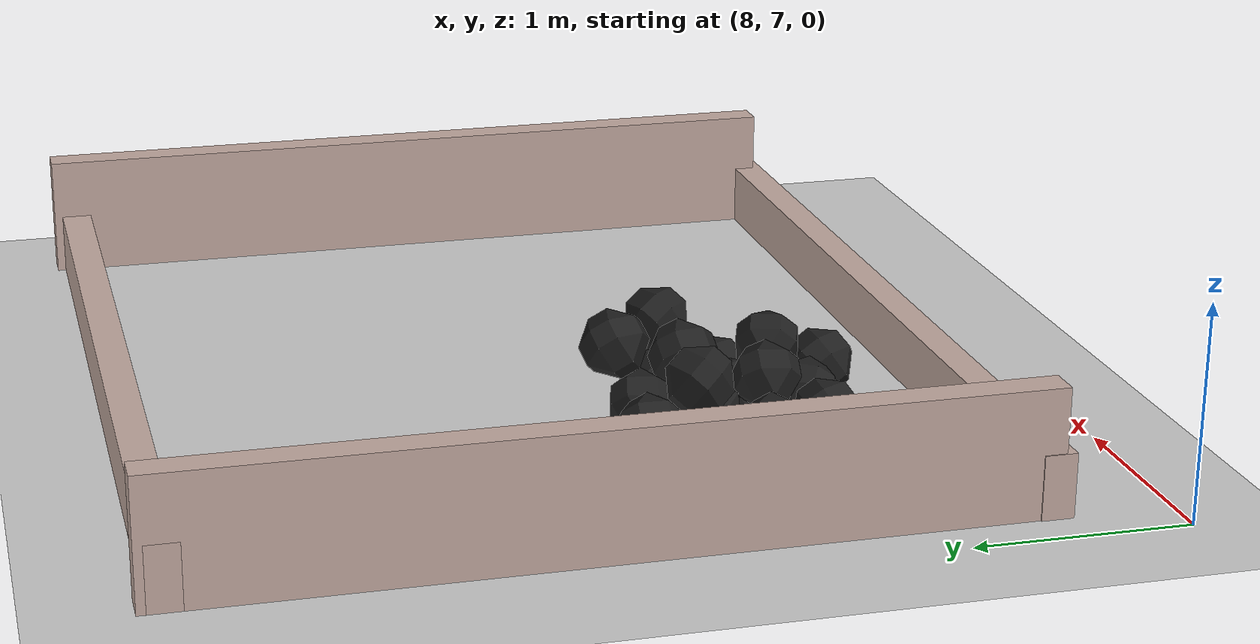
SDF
<sdf version="1.7">
 <world name="default">
  <model name="ground_plane">
   <static>1</static>
   <link name="link">
    <collision name="collision">
     <geometry><plane><normal>0 0 1</normal><size>100 100</size></plane></geometry>
     <surface><friction><ode><mu>100</mu><mu2>50</mu2></ode></friction></surface>
    </collision>
    <visual name="visual">
     <cast_shadows>0</cast_shadows>
     <geometry><plane><normal>0 0 1</normal><size>100 100</size></plane></geometry>
     <material>
      <script><uri>file://media/materials/scripts/gazebo.material</uri><name>Gazebo/Grey</name></script>
     </material>
    </visual>
   </link>
  </model>
  <model name="haoduomiantiaa_15">
   <link name="link_0">
    <inertial>
     <mass>0.2</mass>
     <inertia>
      <ixx>0.166667</ixx>
      <ixy>0</ixy>
      <ixz>0</ixz>
      <iyy>0.166667</iyy>
      <iyz>0</iyz>
      <izz>0.166667</izz>
     </inertia>
    </inertial>
    <visual name="visual">
     <geometry>
      <mesh>
       <uri>/home/lihaoyang/catkin_ws/src/pudong_gazebo/world/stl/haoduomianti.stl</uri>
       <scale>1 1 1</scale>
      </mesh>
     </geometry>
     <material>
      <lighting>1</lighting>
      <script><uri>file://media/materials/scripts/gazebo.material</uri><name>Gazebo/Black</name></script>
      <shader type="pixel"><normal_map>__default__</normal_map></shader>
      <ambient>0.3 0.3 0.3 1</ambient>
      <diffuse>0.7 0.7 0.7 1</diffuse>
      <specular>0.01 0.01 0.01 1</specular>
      <emissive>0 0 0 1</emissive>
     </material>
    </visual>
    <collision name="collision">
     <geometry>
      <mesh>
       <uri>/home/lihaoyang/catkin_ws/src/pudong_gazebo/world/stl/haoduomianti.stl</uri>
       <scale>1 1 1</scale>
      </mesh>
     </geometry>
     <surface>
      <friction>
       <ode><mu>1</mu><mu2>1</mu2><fdir1>0 0 0</fdir1><slip1>0</slip1><slip2>0</slip2></ode>
       <torsional>
        <coefficient>1</coefficient>
        <patch_radius>0</patch_radius>
        <surface_radius>0</surface_radius>
        <use_patch_radius>1</use_patch_radius>
        <ode><slip>0</slip></ode>
       </torsional>
      </friction>
      <bounce><restitution_coefficient>0</restitution_coefficient><threshold>1e+06</threshold></bounce>
      <contact>
       <collide_without_contact>0</collide_without_contact>
       <collide_without_contact_bitmask>1</collide_without_contact_bitmask>
       <collide_bitmask>1</collide_bitmask>
       <ode>
        <soft_cfm>0</soft_cfm>
        <soft_erp>0.2</soft_erp>
        <kp>1e+13</kp>
        <kd>1</kd>
        <max_vel>0.01</max_vel>
        <min_depth>0</min_depth>
       </ode>
       <bullet>
        <split_impulse>1</split_impulse>
        <split_impulse_penetration_threshold>-0.01</split_impulse_penetration_threshold>
        <soft_cfm>0</soft_cfm>
        <soft_erp>0.2</soft_erp>
        <kp>1e+13</kp>
        <kd>1</kd>
       </bullet>
      </contact>
     </surface>
    </collision>
   </link>
   <static>0</static>
   <pose>9.53275 8.22216 -0.115589 0.785344 -0.615562 -0.567623</pose>
  </model>
  <model name="haoduomiantiaa_33">
   <link name="link_0">
    <inertial>
     <mass>0.2</mass>
     <inertia>
      <ixx>0.166667</ixx>
      <ixy>0</ixy>
      <ixz>0</ixz>
      <iyy>0.166667</iyy>
      <iyz>0</iyz>
      <izz>0.166667</izz>
     </inertia>
    </inertial>
    <visual name="visual">
     <geometry>
      <mesh>
       <uri>/home/lihaoyang/catkin_ws/src/pudong_gazebo/world/stl/haoduomianti.stl</uri>
       <scale>1 1 1</scale>
      </mesh>
     </geometry>
     <material>
      <lighting>1</lighting>
      <script><uri>file://media/materials/scripts/gazebo.material</uri><name>Gazebo/Black</name></script>
      <shader type="pixel"><normal_map>__default__</normal_map></shader>
      <ambient>0.3 0.3 0.3 1</ambient>
      <diffuse>0.7 0.7 0.7 1</diffuse>
      <specular>0.01 0.01 0.01 1</specular>
      <emissive>0 0 0 1</emissive>
     </material>
    </visual>
    <collision name="collision">
     <geometry>
      <mesh>
       <uri>/home/lihaoyang/catkin_ws/src/pudong_gazebo/world/stl/haoduomianti.stl</uri>
       <scale>1 1 1</scale>
      </mesh>
     </geometry>
     <surface>
      <friction>
       <ode><mu>1</mu><mu2>1</mu2><fdir1>0 0 0</fdir1><slip1>0</slip1><slip2>0</slip2></ode>
       <torsional>
        <coefficient>1</coefficient>
        <patch_radius>0</patch_radius>
        <surface_radius>0</surface_radius>
        <use_patch_radius>1</use_patch_radius>
        <ode><slip>0</slip></ode>
       </torsional>
      </friction>
      <bounce><restitution_coefficient>0</restitution_coefficient><threshold>1e+06</threshold></bounce>
      <contact>
       <collide_without_contact>0</collide_without_contact>
       <collide_without_contact_bitmask>1</collide_without_contact_bitmask>
       <collide_bitmask>1</collide_bitmask>
       <ode>
        <soft_cfm>0</soft_cfm>
        <soft_erp>0.2</soft_erp>
        <kp>1e+13</kp>
        <kd>1</kd>
        <max_vel>0.01</max_vel>
        <min_depth>0</min_depth>
       </ode>
       <bullet>
        <split_impulse>1</split_impulse>
        <split_impulse_penetration_threshold>-0.01</split_impulse_penetration_threshold>
        <soft_cfm>0</soft_cfm>
        <soft_erp>0.2</soft_erp>
        <kp>1e+13</kp>
        <kd>1</kd>
       </bullet>
      </contact>
     </surface>
    </collision>
   </link>
   <static>0</static>
   <pose>9.22953 8.83439 0.117236 0.778802 -0.52781 3.07919</pose>
  </model>
  <model name="haoduomiantiaa_49">
   <link name="link_0">
    <inertial>
     <mass>0.2</mass>
     <inertia>
      <ixx>0.166667</ixx>
      <ixy>0</ixy>
      <ixz>0</ixz>
      <iyy>0.166667</iyy>
      <iyz>0</iyz>
      <izz>0.166667</izz>
     </inertia>
    </inertial>
    <visual name="visual">
     <geometry>
      <mesh>
       <uri>/home/lihaoyang/catkin_ws/src/pudong_gazebo/world/stl/haoduomianti.stl</uri>
       <scale>1 1 1</scale>
      </mesh>
     </geometry>
     <material>
      <lighting>1</lighting>
      <script><uri>file://media/materials/scripts/gazebo.material</uri><name>Gazebo/Black</name></script>
      <shader type="pixel"><normal_map>__default__</normal_map></shader>
      <ambient>0.3 0.3 0.3 1</ambient>
      <diffuse>0.7 0.7 0.7 1</diffuse>
      <specular>0.01 0.01 0.01 1</specular>
      <emissive>0 0 0 1</emissive>
     </material>
    </visual>
    <collision name="collision">
     <geometry>
      <mesh>
       <uri>/home/lihaoyang/catkin_ws/src/pudong_gazebo/world/stl/haoduomianti.stl</uri>
       <scale>1 1 1</scale>
      </mesh>
     </geometry>
     <surface>
      <friction>
       <ode><mu>1</mu><mu2>1</mu2><fdir1>0 0 0</fdir1><slip1>0</slip1><slip2>0</slip2></ode>
       <torsional>
        <coefficient>1</coefficient>
        <patch_radius>0</patch_radius>
        <surface_radius>0</surface_radius>
        <use_patch_radius>1</use_patch_radius>
        <ode><slip>0</slip></ode>
       </torsional>
      </friction>
      <bounce><restitution_coefficient>0</restitution_coefficient><threshold>1e+06</threshold></bounce>
      <contact>
       <collide_without_contact>0</collide_without_contact>
       <collide_without_contact_bitmask>1</collide_without_contact_bitmask>
       <collide_bitmask>1</collide_bitmask>
       <ode>
        <soft_cfm>0</soft_cfm>
        <soft_erp>0.2</soft_erp>
        <kp>1e+13</kp>
        <kd>1</kd>
        <max_vel>0.01</max_vel>
        <min_depth>0</min_depth>
       </ode>
       <bullet>
        <split_impulse>1</split_impulse>
        <split_impulse_penetration_threshold>-0.01</split_impulse_penetration_threshold>
        <soft_cfm>0</soft_cfm>
        <soft_erp>0.2</soft_erp>
        <kp>1e+13</kp>
        <kd>1</kd>
       </bullet>
      </contact>
     </surface>
    </collision>
   </link>
   <static>0</static>
   <pose>9.01794 8.79198 -0.115499 0.785403 -0.615472 -0.610764</pose>
  </model>
  <model name="haoduomiantiaa_52">
   <link name="link_0">
    <inertial>
     <mass>0.2</mass>
     <inertia>
      <ixx>0.166667</ixx>
      <ixy>0</ixy>
      <ixz>0</ixz>
      <iyy>0.166667</iyy>
      <iyz>0</iyz>
      <izz>0.166667</izz>
     </inertia>
    </inertial>
    <visual name="visual">
     <geometry>
      <mesh>
       <uri>/home/lihaoyang/catkin_ws/src/pudong_gazebo/world/stl/haoduomianti.stl</uri>
       <scale>1 1 1</scale>
      </mesh>
     </geometry>
     <material>
      <lighting>1</lighting>
      <script><uri>file://media/materials/scripts/gazebo.material</uri><name>Gazebo/Black</name></script>
      <shader type="pixel"><normal_map>__default__</normal_map></shader>
      <ambient>0.3 0.3 0.3 1</ambient>
      <diffuse>0.7 0.7 0.7 1</diffuse>
      <specular>0.01 0.01 0.01 1</specular>
      <emissive>0 0 0 1</emissive>
     </material>
    </visual>
    <collision name="collision">
     <geometry>
      <mesh>
       <uri>/home/lihaoyang/catkin_ws/src/pudong_gazebo/world/stl/haoduomianti.stl</uri>
       <scale>1 1 1</scale>
      </mesh>
     </geometry>
     <surface>
      <friction>
       <ode><mu>1</mu><mu2>1</mu2><fdir1>0 0 0</fdir1><slip1>0</slip1><slip2>0</slip2></ode>
       <torsional>
        <coefficient>1</coefficient>
        <patch_radius>0</patch_radius>
        <surface_radius>0</surface_radius>
        <use_patch_radius>1</use_patch_radius>
        <ode><slip>0</slip></ode>
       </torsional>
      </friction>
      <bounce><restitution_coefficient>0</restitution_coefficient><threshold>1e+06</threshold></bounce>
      <contact>
       <collide_without_contact>0</collide_without_contact>
       <collide_without_contact_bitmask>1</collide_without_contact_bitmask>
       <collide_bitmask>1</collide_bitmask>
       <ode>
        <soft_cfm>0</soft_cfm>
        <soft_erp>0.2</soft_erp>
        <kp>1e+13</kp>
        <kd>1</kd>
        <max_vel>0.01</max_vel>
        <min_depth>0</min_depth>
       </ode>
       <bullet>
        <split_impulse>1</split_impulse>
        <split_impulse_penetration_threshold>-0.01</split_impulse_penetration_threshold>
        <soft_cfm>0</soft_cfm>
        <soft_erp>0.2</soft_erp>
        <kp>1e+13</kp>
        <kd>1</kd>
       </bullet>
      </contact>
     </surface>
    </collision>
   </link>
   <static>0</static>
   <pose>9.56102 9.00311 -0.115135 0.785449 -0.615415 -2.30364</pose>
  </model>
  <model name="haoduomiantiaa_60">
   <link name="link_0">
    <inertial>
     <mass>0.2</mass>
     <inertia>
      <ixx>0.166667</ixx>
      <ixy>0</ixy>
      <ixz>0</ixz>
      <iyy>0.166667</iyy>
      <iyz>0</iyz>
      <izz>0.166667</izz>
     </inertia>
    </inertial>
    <visual name="visual">
     <geometry>
      <mesh>
       <uri>/home/lihaoyang/catkin_ws/src/pudong_gazebo/world/stl/haoduomianti.stl</uri>
       <scale>1 1 1</scale>
      </mesh>
     </geometry>
     <material>
      <lighting>1</lighting>
      <script><uri>file://media/materials/scripts/gazebo.material</uri><name>Gazebo/Black</name></script>
      <shader type="pixel"><normal_map>__default__</normal_map></shader>
      <ambient>0.3 0.3 0.3 1</ambient>
      <diffuse>0.7 0.7 0.7 1</diffuse>
      <specular>0.01 0.01 0.01 1</specular>
      <emissive>0 0 0 1</emissive>
     </material>
    </visual>
    <collision name="collision">
     <geometry>
      <mesh>
       <uri>/home/lihaoyang/catkin_ws/src/pudong_gazebo/world/stl/haoduomianti.stl</uri>
       <scale>1 1 1</scale>
      </mesh>
     </geometry>
     <surface>
      <friction>
       <ode><mu>1</mu><mu2>1</mu2><fdir1>0 0 0</fdir1><slip1>0</slip1><slip2>0</slip2></ode>
       <torsional>
        <coefficient>1</coefficient>
        <patch_radius>0</patch_radius>
        <surface_radius>0</surface_radius>
        <use_patch_radius>1</use_patch_radius>
        <ode><slip>0</slip></ode>
       </torsional>
      </friction>
      <bounce><restitution_coefficient>0</restitution_coefficient><threshold>1e+06</threshold></bounce>
      <contact>
       <collide_without_contact>0</collide_without_contact>
       <collide_without_contact_bitmask>1</collide_without_contact_bitmask>
       <collide_bitmask>1</collide_bitmask>
       <ode>
        <soft_cfm>0</soft_cfm>
        <soft_erp>0.2</soft_erp>
        <kp>1e+13</kp>
        <kd>1</kd>
        <max_vel>0.01</max_vel>
        <min_depth>0</min_depth>
       </ode>
       <bullet>
        <split_impulse>1</split_impulse>
        <split_impulse_penetration_threshold>-0.01</split_impulse_penetration_threshold>
        <soft_cfm>0</soft_cfm>
        <soft_erp>0.2</soft_erp>
        <kp>1e+13</kp>
        <kd>1</kd>
       </bullet>
      </contact>
     </surface>
    </collision>
   </link>
   <static>0</static>
   <pose>9.25549 9.04348 -0.115762 0.78545 -0.615356 2.0626</pose>
  </model>
  <model name="haoduomiantiaa_65">
   <link name="link_0">
    <inertial>
     <mass>0.2</mass>
     <inertia>
      <ixx>0.166667</ixx>
      <ixy>0</ixy>
      <ixz>0</ixz>
      <iyy>0.166667</iyy>
      <iyz>0</iyz>
      <izz>0.166667</izz>
     </inertia>
    </inertial>
    <visual name="visual">
     <geometry>
      <mesh>
       <uri>/home/lihaoyang/catkin_ws/src/pudong_gazebo/world/stl/haoduomianti.stl</uri>
       <scale>1 1 1</scale>
      </mesh>
     </geometry>
     <material>
      <lighting>1</lighting>
      <script><uri>file://media/materials/scripts/gazebo.material</uri><name>Gazebo/Black</name></script>
      <shader type="pixel"><normal_map>__default__</normal_map></shader>
      <ambient>0.3 0.3 0.3 1</ambient>
      <diffuse>0.7 0.7 0.7 1</diffuse>
      <specular>0.01 0.01 0.01 1</specular>
      <emissive>0 0 0 1</emissive>
     </material>
    </visual>
    <collision name="collision">
     <geometry>
      <mesh>
       <uri>/home/lihaoyang/catkin_ws/src/pudong_gazebo/world/stl/haoduomianti.stl</uri>
       <scale>1 1 1</scale>
      </mesh>
     </geometry>
     <surface>
      <friction>
       <ode><mu>1</mu><mu2>1</mu2><fdir1>0 0 0</fdir1><slip1>0</slip1><slip2>0</slip2></ode>
       <torsional>
        <coefficient>1</coefficient>
        <patch_radius>0</patch_radius>
        <surface_radius>0</surface_radius>
        <use_patch_radius>1</use_patch_radius>
        <ode><slip>0</slip></ode>
       </torsional>
      </friction>
      <bounce><restitution_coefficient>0</restitution_coefficient><threshold>1e+06</threshold></bounce>
      <contact>
       <collide_without_contact>0</collide_without_contact>
       <collide_without_contact_bitmask>1</collide_without_contact_bitmask>
       <collide_bitmask>1</collide_bitmask>
       <ode>
        <soft_cfm>0</soft_cfm>
        <soft_erp>0.2</soft_erp>
        <kp>1e+13</kp>
        <kd>1</kd>
        <max_vel>0.01</max_vel>
        <min_depth>0</min_depth>
       </ode>
       <bullet>
        <split_impulse>1</split_impulse>
        <split_impulse_penetration_threshold>-0.01</split_impulse_penetration_threshold>
        <soft_cfm>0</soft_cfm>
        <soft_erp>0.2</soft_erp>
        <kp>1e+13</kp>
        <kd>1</kd>
       </bullet>
      </contact>
     </surface>
    </collision>
   </link>
   <static>0</static>
   <pose>9.62604 8.80501 0.096395 0.800184 -0.725386 0.165284</pose>
  </model>
  <model name="haoduomiantiaa_70">
   <link name="link_0">
    <inertial>
     <mass>0.2</mass>
     <inertia>
      <ixx>0.166667</ixx>
      <ixy>0</ixy>
      <ixz>0</ixz>
      <iyy>0.166667</iyy>
      <iyz>0</iyz>
      <izz>0.166667</izz>
     </inertia>
    </inertial>
    <visual name="visual">
     <geometry>
      <mesh>
       <uri>/home/lihaoyang/catkin_ws/src/pudong_gazebo/world/stl/haoduomianti.stl</uri>
       <scale>1 1 1</scale>
      </mesh>
     </geometry>
     <material>
      <lighting>1</lighting>
      <script><uri>file://media/materials/scripts/gazebo.material</uri><name>Gazebo/Black</name></script>
      <shader type="pixel"><normal_map>__default__</normal_map></shader>
      <ambient>0.3 0.3 0.3 1</ambient>
      <diffuse>0.7 0.7 0.7 1</diffuse>
      <specular>0.01 0.01 0.01 1</specular>
      <emissive>0 0 0 1</emissive>
     </material>
    </visual>
    <collision name="collision">
     <geometry>
      <mesh>
       <uri>/home/lihaoyang/catkin_ws/src/pudong_gazebo/world/stl/haoduomianti.stl</uri>
       <scale>1 1 1</scale>
      </mesh>
     </geometry>
     <surface>
      <friction>
       <ode><mu>1</mu><mu2>1</mu2><fdir1>0 0 0</fdir1><slip1>0</slip1><slip2>0</slip2></ode>
       <torsional>
        <coefficient>1</coefficient>
        <patch_radius>0</patch_radius>
        <surface_radius>0</surface_radius>
        <use_patch_radius>1</use_patch_radius>
        <ode><slip>0</slip></ode>
       </torsional>
      </friction>
      <bounce><restitution_coefficient>0</restitution_coefficient><threshold>1e+06</threshold></bounce>
      <contact>
       <collide_without_contact>0</collide_without_contact>
       <collide_without_contact_bitmask>1</collide_without_contact_bitmask>
       <collide_bitmask>1</collide_bitmask>
       <ode>
        <soft_cfm>0</soft_cfm>
        <soft_erp>0.2</soft_erp>
        <kp>1e+13</kp>
        <kd>1</kd>
        <max_vel>0.01</max_vel>
        <min_depth>0</min_depth>
       </ode>
       <bullet>
        <split_impulse>1</split_impulse>
        <split_impulse_penetration_threshold>-0.01</split_impulse_penetration_threshold>
        <soft_cfm>0</soft_cfm>
        <soft_erp>0.2</soft_erp>
        <kp>1e+13</kp>
        <kd>1</kd>
       </bullet>
      </contact>
     </surface>
    </collision>
   </link>
   <static>0</static>
   <pose>9.73916 9.105 0.127056 0.827026 -0.683801 0.303821</pose>
  </model>
  <model name="haoduomiantiaa_77">
   <link name="link_0">
    <inertial>
     <mass>0.2</mass>
     <inertia>
      <ixx>0.166667</ixx>
      <ixy>0</ixy>
      <ixz>0</ixz>
      <iyy>0.166667</iyy>
      <iyz>0</iyz>
      <izz>0.166667</izz>
     </inertia>
    </inertial>
    <visual name="visual">
     <geometry>
      <mesh>
       <uri>/home/lihaoyang/catkin_ws/src/pudong_gazebo/world/stl/haoduomianti.stl</uri>
       <scale>1 1 1</scale>
      </mesh>
     </geometry>
     <material>
      <lighting>1</lighting>
      <script><uri>file://media/materials/scripts/gazebo.material</uri><name>Gazebo/Black</name></script>
      <shader type="pixel"><normal_map>__default__</normal_map></shader>
      <ambient>0.3 0.3 0.3 1</ambient>
      <diffuse>0.7 0.7 0.7 1</diffuse>
      <specular>0.01 0.01 0.01 1</specular>
      <emissive>0 0 0 1</emissive>
     </material>
    </visual>
    <collision name="collision">
     <geometry>
      <mesh>
       <uri>/home/lihaoyang/catkin_ws/src/pudong_gazebo/world/stl/haoduomianti.stl</uri>
       <scale>1 1 1</scale>
      </mesh>
     </geometry>
     <surface>
      <friction>
       <ode><mu>1</mu><mu2>1</mu2><fdir1>0 0 0</fdir1><slip1>0</slip1><slip2>0</slip2></ode>
       <torsional>
        <coefficient>1</coefficient>
        <patch_radius>0</patch_radius>
        <surface_radius>0</surface_radius>
        <use_patch_radius>1</use_patch_radius>
        <ode><slip>0</slip></ode>
       </torsional>
      </friction>
      <bounce><restitution_coefficient>0</restitution_coefficient><threshold>1e+06</threshold></bounce>
      <contact>
       <collide_without_contact>0</collide_without_contact>
       <collide_without_contact_bitmask>1</collide_without_contact_bitmask>
       <collide_bitmask>1</collide_bitmask>
       <ode>
        <soft_cfm>0</soft_cfm>
        <soft_erp>0.2</soft_erp>
        <kp>1e+13</kp>
        <kd>1</kd>
        <max_vel>0.01</max_vel>
        <min_depth>0</min_depth>
       </ode>
       <bullet>
        <split_impulse>1</split_impulse>
        <split_impulse_penetration_threshold>-0.01</split_impulse_penetration_threshold>
        <soft_cfm>0</soft_cfm>
        <soft_erp>0.2</soft_erp>
        <kp>1e+13</kp>
        <kd>1</kd>
       </bullet>
      </contact>
     </surface>
    </collision>
   </link>
   <static>0</static>
   <pose>9.69242 8.35949 0.059679 0.76711 -0.424377 -0.375954</pose>
  </model>
  <model name="haoduomiantiaa_78">
   <link name="link_0">
    <inertial>
     <mass>0.2</mass>
     <inertia>
      <ixx>0.166667</ixx>
      <ixy>0</ixy>
      <ixz>0</ixz>
      <iyy>0.166667</iyy>
      <iyz>0</iyz>
      <izz>0.166667</izz>
     </inertia>
    </inertial>
    <visual name="visual">
     <geometry>
      <mesh>
       <uri>/home/lihaoyang/catkin_ws/src/pudong_gazebo/world/stl/haoduomianti.stl</uri>
       <scale>1 1 1</scale>
      </mesh>
     </geometry>
     <material>
      <lighting>1</lighting>
      <script><uri>file://media/materials/scripts/gazebo.material</uri><name>Gazebo/Black</name></script>
      <shader type="pixel"><normal_map>__default__</normal_map></shader>
      <ambient>0.3 0.3 0.3 1</ambient>
      <diffuse>0.7 0.7 0.7 1</diffuse>
      <specular>0.01 0.01 0.01 1</specular>
      <emissive>0 0 0 1</emissive>
     </material>
    </visual>
    <collision name="collision">
     <geometry>
      <mesh>
       <uri>/home/lihaoyang/catkin_ws/src/pudong_gazebo/world/stl/haoduomianti.stl</uri>
       <scale>1 1 1</scale>
      </mesh>
     </geometry>
     <surface>
      <friction>
       <ode><mu>1</mu><mu2>1</mu2><fdir1>0 0 0</fdir1><slip1>0</slip1><slip2>0</slip2></ode>
       <torsional>
        <coefficient>1</coefficient>
        <patch_radius>0</patch_radius>
        <surface_radius>0</surface_radius>
        <use_patch_radius>1</use_patch_radius>
        <ode><slip>0</slip></ode>
       </torsional>
      </friction>
      <bounce><restitution_coefficient>0</restitution_coefficient><threshold>1e+06</threshold></bounce>
      <contact>
       <collide_without_contact>0</collide_without_contact>
       <collide_without_contact_bitmask>1</collide_without_contact_bitmask>
       <collide_bitmask>1</collide_bitmask>
       <ode>
        <soft_cfm>0</soft_cfm>
        <soft_erp>0.2</soft_erp>
        <kp>1e+13</kp>
        <kd>1</kd>
        <max_vel>0.01</max_vel>
        <min_depth>0</min_depth>
       </ode>
       <bullet>
        <split_impulse>1</split_impulse>
        <split_impulse_penetration_threshold>-0.01</split_impulse_penetration_threshold>
        <soft_cfm>0</soft_cfm>
        <soft_erp>0.2</soft_erp>
        <kp>1e+13</kp>
        <kd>1</kd>
       </bullet>
      </contact>
     </surface>
    </collision>
   </link>
   <static>0</static>
   <pose>9.12945 8.50803 -0.115767 0.785426 -0.615477 -0.141677</pose>
  </model>
  <model name="haoduomiantiaa_81">
   <link name="link_0">
    <inertial>
     <mass>0.2</mass>
     <inertia>
      <ixx>0.166667</ixx>
      <ixy>0</ixy>
      <ixz>0</ixz>
      <iyy>0.166667</iyy>
      <iyz>0</iyz>
      <izz>0.166667</izz>
     </inertia>
    </inertial>
    <visual name="visual">
     <geometry>
      <mesh>
       <uri>/home/lihaoyang/catkin_ws/src/pudong_gazebo/world/stl/haoduomianti.stl</uri>
       <scale>1 1 1</scale>
      </mesh>
     </geometry>
     <material>
      <lighting>1</lighting>
      <script><uri>file://media/materials/scripts/gazebo.material</uri><name>Gazebo/Black</name></script>
      <shader type="pixel"><normal_map>__default__</normal_map></shader>
      <ambient>0.3 0.3 0.3 1</ambient>
      <diffuse>0.7 0.7 0.7 1</diffuse>
      <specular>0.01 0.01 0.01 1</specular>
      <emissive>0 0 0 1</emissive>
     </material>
    </visual>
    <collision name="collision">
     <geometry>
      <mesh>
       <uri>/home/lihaoyang/catkin_ws/src/pudong_gazebo/world/stl/haoduomianti.stl</uri>
       <scale>1 1 1</scale>
      </mesh>
     </geometry>
     <surface>
      <friction>
       <ode><mu>1</mu><mu2>1</mu2><fdir1>0 0 0</fdir1><slip1>0</slip1><slip2>0</slip2></ode>
       <torsional>
        <coefficient>1</coefficient>
        <patch_radius>0</patch_radius>
        <surface_radius>0</surface_radius>
        <use_patch_radius>1</use_patch_radius>
        <ode><slip>0</slip></ode>
       </torsional>
      </friction>
      <bounce><restitution_coefficient>0</restitution_coefficient><threshold>1e+06</threshold></bounce>
      <contact>
       <collide_without_contact>0</collide_without_contact>
       <collide_without_contact_bitmask>1</collide_without_contact_bitmask>
       <collide_bitmask>1</collide_bitmask>
       <ode>
        <soft_cfm>0</soft_cfm>
        <soft_erp>0.2</soft_erp>
        <kp>1e+13</kp>
        <kd>1</kd>
        <max_vel>0.01</max_vel>
        <min_depth>0</min_depth>
       </ode>
       <bullet>
        <split_impulse>1</split_impulse>
        <split_impulse_penetration_threshold>-0.01</split_impulse_penetration_threshold>
        <soft_cfm>0</soft_cfm>
        <soft_erp>0.2</soft_erp>
        <kp>1e+13</kp>
        <kd>1</kd>
       </bullet>
      </contact>
     </surface>
    </collision>
   </link>
   <static>0</static>
   <pose>9.80614 8.85233 -0.115502 0.7854 -0.615401 -1.24781</pose>
  </model>
  <model name="haoduomiantiaa_88">
   <link name="link_0">
    <inertial>
     <mass>0.2</mass>
     <inertia>
      <ixx>0.166667</ixx>
      <ixy>0</ixy>
      <ixz>0</ixz>
      <iyy>0.166667</iyy>
      <iyz>0</iyz>
      <izz>0.166667</izz>
     </inertia>
    </inertial>
    <visual name="visual">
     <geometry>
      <mesh>
       <uri>/home/lihaoyang/catkin_ws/src/pudong_gazebo/world/stl/haoduomianti.stl</uri>
       <scale>1 1 1</scale>
      </mesh>
     </geometry>
     <material>
      <lighting>1</lighting>
      <script><uri>file://media/materials/scripts/gazebo.material</uri><name>Gazebo/Black</name></script>
      <shader type="pixel"><normal_map>__default__</normal_map></shader>
      <ambient>0.3 0.3 0.3 1</ambient>
      <diffuse>0.7 0.7 0.7 1</diffuse>
      <specular>0.01 0.01 0.01 1</specular>
      <emissive>0 0 0 1</emissive>
     </material>
    </visual>
    <collision name="collision">
     <geometry>
      <mesh>
       <uri>/home/lihaoyang/catkin_ws/src/pudong_gazebo/world/stl/haoduomianti.stl</uri>
       <scale>1 1 1</scale>
      </mesh>
     </geometry>
     <surface>
      <friction>
       <ode><mu>1</mu><mu2>1</mu2><fdir1>0 0 0</fdir1><slip1>0</slip1><slip2>0</slip2></ode>
       <torsional>
        <coefficient>1</coefficient>
        <patch_radius>0</patch_radius>
        <surface_radius>0</surface_radius>
        <use_patch_radius>1</use_patch_radius>
        <ode><slip>0</slip></ode>
       </torsional>
      </friction>
      <bounce><restitution_coefficient>0</restitution_coefficient><threshold>1e+06</threshold></bounce>
      <contact>
       <collide_without_contact>0</collide_without_contact>
       <collide_without_contact_bitmask>1</collide_without_contact_bitmask>
       <collide_bitmask>1</collide_bitmask>
       <ode>
        <soft_cfm>0</soft_cfm>
        <soft_erp>0.2</soft_erp>
        <kp>1e+13</kp>
        <kd>1</kd>
        <max_vel>0.01</max_vel>
        <min_depth>0</min_depth>
       </ode>
       <bullet>
        <split_impulse>1</split_impulse>
        <split_impulse_penetration_threshold>-0.01</split_impulse_penetration_threshold>
        <soft_cfm>0</soft_cfm>
        <soft_erp>0.2</soft_erp>
        <kp>1e+13</kp>
        <kd>1</kd>
       </bullet>
      </contact>
     </surface>
    </collision>
   </link>
   <static>0</static>
   <pose>9.3963 8.74204 -0.111865 0.785357 -0.530099 3.08694</pose>
  </model>
  <model name="haoduomiantiaa_92">
   <link name="link_0">
    <inertial>
     <mass>0.2</mass>
     <inertia>
      <ixx>0.166667</ixx>
      <ixy>0</ixy>
      <ixz>0</ixz>
      <iyy>0.166667</iyy>
      <iyz>0</iyz>
      <izz>0.166667</izz>
     </inertia>
    </inertial>
    <visual name="visual">
     <geometry>
      <mesh>
       <uri>/home/lihaoyang/catkin_ws/src/pudong_gazebo/world/stl/haoduomianti.stl</uri>
       <scale>1 1 1</scale>
      </mesh>
     </geometry>
     <material>
      <lighting>1</lighting>
      <script><uri>file://media/materials/scripts/gazebo.material</uri><name>Gazebo/Black</name></script>
      <shader type="pixel"><normal_map>__default__</normal_map></shader>
      <ambient>0.3 0.3 0.3 1</ambient>
      <diffuse>0.7 0.7 0.7 1</diffuse>
      <specular>0.01 0.01 0.01 1</specular>
      <emissive>0 0 0 1</emissive>
     </material>
    </visual>
    <collision name="collision">
     <geometry>
      <mesh>
       <uri>/home/lihaoyang/catkin_ws/src/pudong_gazebo/world/stl/haoduomianti.stl</uri>
       <scale>1 1 1</scale>
      </mesh>
     </geometry>
     <surface>
      <friction>
       <ode><mu>1</mu><mu2>1</mu2><fdir1>0 0 0</fdir1><slip1>0</slip1><slip2>0</slip2></ode>
       <torsional>
        <coefficient>1</coefficient>
        <patch_radius>0</patch_radius>
        <surface_radius>0</surface_radius>
        <use_patch_radius>1</use_patch_radius>
        <ode><slip>0</slip></ode>
       </torsional>
      </friction>
      <bounce><restitution_coefficient>0</restitution_coefficient><threshold>1e+06</threshold></bounce>
      <contact>
       <collide_without_contact>0</collide_without_contact>
       <collide_without_contact_bitmask>1</collide_without_contact_bitmask>
       <collide_bitmask>1</collide_bitmask>
       <ode>
        <soft_cfm>0</soft_cfm>
        <soft_erp>0.2</soft_erp>
        <kp>1e+13</kp>
        <kd>1</kd>
        <max_vel>0.01</max_vel>
        <min_depth>0</min_depth>
       </ode>
       <bullet>
        <split_impulse>1</split_impulse>
        <split_impulse_penetration_threshold>-0.01</split_impulse_penetration_threshold>
        <soft_cfm>0</soft_cfm>
        <soft_erp>0.2</soft_erp>
        <kp>1e+13</kp>
        <kd>1</kd>
       </bullet>
      </contact>
     </surface>
    </collision>
   </link>
   <static>0</static>
   <pose>9.89243 8.02276 -0.11498 0.774483 -0.621377 0.567958</pose>
  </model>
  <model name="haoduomiantiaa_95">
   <link name="link_0">
    <inertial>
     <mass>0.2</mass>
     <inertia>
      <ixx>0.166667</ixx>
      <ixy>0</ixy>
      <ixz>0</ixz>
      <iyy>0.166667</iyy>
      <iyz>0</iyz>
      <izz>0.166667</izz>
     </inertia>
    </inertial>
    <visual name="visual">
     <geometry>
      <mesh>
       <uri>/home/lihaoyang/catkin_ws/src/pudong_gazebo/world/stl/haoduomianti.stl</uri>
       <scale>1 1 1</scale>
      </mesh>
     </geometry>
     <material>
      <lighting>1</lighting>
      <script><uri>file://media/materials/scripts/gazebo.material</uri><name>Gazebo/Black</name></script>
      <shader type="pixel"><normal_map>__default__</normal_map></shader>
      <ambient>0.3 0.3 0.3 1</ambient>
      <diffuse>0.7 0.7 0.7 1</diffuse>
      <specular>0.01 0.01 0.01 1</specular>
      <emissive>0 0 0 1</emissive>
     </material>
    </visual>
    <collision name="collision">
     <geometry>
      <mesh>
       <uri>/home/lihaoyang/catkin_ws/src/pudong_gazebo/world/stl/haoduomianti.stl</uri>
       <scale>1 1 1</scale>
      </mesh>
     </geometry>
     <surface>
      <friction>
       <ode><mu>1</mu><mu2>1</mu2><fdir1>0 0 0</fdir1><slip1>0</slip1><slip2>0</slip2></ode>
       <torsional>
        <coefficient>1</coefficient>
        <patch_radius>0</patch_radius>
        <surface_radius>0</surface_radius>
        <use_patch_radius>1</use_patch_radius>
        <ode><slip>0</slip></ode>
       </torsional>
      </friction>
      <bounce><restitution_coefficient>0</restitution_coefficient><threshold>1e+06</threshold></bounce>
      <contact>
       <collide_without_contact>0</collide_without_contact>
       <collide_without_contact_bitmask>1</collide_without_contact_bitmask>
       <collide_bitmask>1</collide_bitmask>
       <ode>
        <soft_cfm>0</soft_cfm>
        <soft_erp>0.2</soft_erp>
        <kp>1e+13</kp>
        <kd>1</kd>
        <max_vel>0.01</max_vel>
        <min_depth>0</min_depth>
       </ode>
       <bullet>
        <split_impulse>1</split_impulse>
        <split_impulse_penetration_threshold>-0.01</split_impulse_penetration_threshold>
        <soft_cfm>0</soft_cfm>
        <soft_erp>0.2</soft_erp>
        <kp>1e+13</kp>
        <kd>1</kd>
       </bullet>
      </contact>
     </surface>
    </collision>
   </link>
   <static>0</static>
   <pose>8.85605 9.06822 -0.11548 0.785398 -0.615476 2.63149</pose>
  </model>
  <model name="haoduomiantiaa_104">
   <link name="link_0">
    <inertial>
     <mass>0.2</mass>
     <inertia>
      <ixx>0.166667</ixx>
      <ixy>0</ixy>
      <ixz>0</ixz>
      <iyy>0.166667</iyy>
      <iyz>0</iyz>
      <izz>0.166667</izz>
     </inertia>
    </inertial>
    <visual name="visual">
     <geometry>
      <mesh>
       <uri>/home/lihaoyang/catkin_ws/src/pudong_gazebo/world/stl/haoduomianti.stl</uri>
       <scale>1 1 1</scale>
      </mesh>
     </geometry>
     <material>
      <lighting>1</lighting>
      <script><uri>file://media/materials/scripts/gazebo.material</uri><name>Gazebo/Black</name></script>
      <shader type="pixel"><normal_map>__default__</normal_map></shader>
      <ambient>0.3 0.3 0.3 1</ambient>
      <diffuse>0.7 0.7 0.7 1</diffuse>
      <specular>0.01 0.01 0.01 1</specular>
      <emissive>0 0 0 1</emissive>
     </material>
    </visual>
    <collision name="collision">
     <geometry>
      <mesh>
       <uri>/home/lihaoyang/catkin_ws/src/pudong_gazebo/world/stl/haoduomianti.stl</uri>
       <scale>1 1 1</scale>
      </mesh>
     </geometry>
     <surface>
      <friction>
       <ode><mu>1</mu><mu2>1</mu2><fdir1>0 0 0</fdir1><slip1>0</slip1><slip2>0</slip2></ode>
       <torsional>
        <coefficient>1</coefficient>
        <patch_radius>0</patch_radius>
        <surface_radius>0</surface_radius>
        <use_patch_radius>1</use_patch_radius>
        <ode><slip>0</slip></ode>
       </torsional>
      </friction>
      <bounce><restitution_coefficient>0</restitution_coefficient><threshold>1e+06</threshold></bounce>
      <contact>
       <collide_without_contact>0</collide_without_contact>
       <collide_without_contact_bitmask>1</collide_without_contact_bitmask>
       <collide_bitmask>1</collide_bitmask>
       <ode>
        <soft_cfm>0</soft_cfm>
        <soft_erp>0.2</soft_erp>
        <kp>1e+13</kp>
        <kd>1</kd>
        <max_vel>0.01</max_vel>
        <min_depth>0</min_depth>
       </ode>
       <bullet>
        <split_impulse>1</split_impulse>
        <split_impulse_penetration_threshold>-0.01</split_impulse_penetration_threshold>
        <soft_cfm>0</soft_cfm>
        <soft_erp>0.2</soft_erp>
        <kp>1e+13</kp>
        <kd>1</kd>
       </bullet>
      </contact>
     </surface>
    </collision>
   </link>
   <static>0</static>
   <pose>9.40306 8.48727 0.038739 0.910572 -0.666023 -0.095247</pose>
  </model>
  <model name="haoduomiantiaa_106">
   <link name="link_0">
    <inertial>
     <mass>0.2</mass>
     <inertia>
      <ixx>0.166667</ixx>
      <ixy>0</ixy>
      <ixz>0</ixz>
      <iyy>0.166667</iyy>
      <iyz>0</iyz>
      <izz>0.166667</izz>
     </inertia>
    </inertial>
    <visual name="visual">
     <geometry>
      <mesh>
       <uri>/home/lihaoyang/catkin_ws/src/pudong_gazebo/world/stl/haoduomianti.stl</uri>
       <scale>1 1 1</scale>
      </mesh>
     </geometry>
     <material>
      <lighting>1</lighting>
      <script><uri>file://media/materials/scripts/gazebo.material</uri><name>Gazebo/Black</name></script>
      <shader type="pixel"><normal_map>__default__</normal_map></shader>
      <ambient>0.3 0.3 0.3 1</ambient>
      <diffuse>0.7 0.7 0.7 1</diffuse>
      <specular>0.01 0.01 0.01 1</specular>
      <emissive>0 0 0 1</emissive>
     </material>
    </visual>
    <collision name="collision">
     <geometry>
      <mesh>
       <uri>/home/lihaoyang/catkin_ws/src/pudong_gazebo/world/stl/haoduomianti.stl</uri>
       <scale>1 1 1</scale>
      </mesh>
     </geometry>
     <surface>
      <friction>
       <ode><mu>1</mu><mu2>1</mu2><fdir1>0 0 0</fdir1><slip1>0</slip1><slip2>0</slip2></ode>
       <torsional>
        <coefficient>1</coefficient>
        <patch_radius>0</patch_radius>
        <surface_radius>0</surface_radius>
        <use_patch_radius>1</use_patch_radius>
        <ode><slip>0</slip></ode>
       </torsional>
      </friction>
      <bounce><restitution_coefficient>0</restitution_coefficient><threshold>1e+06</threshold></bounce>
      <contact>
       <collide_without_contact>0</collide_without_contact>
       <collide_without_contact_bitmask>1</collide_without_contact_bitmask>
       <collide_bitmask>1</collide_bitmask>
       <ode>
        <soft_cfm>0</soft_cfm>
        <soft_erp>0.2</soft_erp>
        <kp>1e+13</kp>
        <kd>1</kd>
        <max_vel>0.01</max_vel>
        <min_depth>0</min_depth>
       </ode>
       <bullet>
        <split_impulse>1</split_impulse>
        <split_impulse_penetration_threshold>-0.01</split_impulse_penetration_threshold>
        <soft_cfm>0</soft_cfm>
        <soft_erp>0.2</soft_erp>
        <kp>1e+13</kp>
        <kd>1</kd>
       </bullet>
      </contact>
     </surface>
    </collision>
   </link>
   <static>0</static>
   <pose>9.24945 8.21427 -0.11515 0.785705 -0.61563 0.479159</pose>
  </model>
  <model name="haoduomiantiaa_110">
   <link name="link_0">
    <inertial>
     <mass>0.2</mass>
     <inertia>
      <ixx>0.166667</ixx>
      <ixy>0</ixy>
      <ixz>0</ixz>
      <iyy>0.166667</iyy>
      <iyz>0</iyz>
      <izz>0.166667</izz>
     </inertia>
    </inertial>
    <visual name="visual">
     <geometry>
      <mesh>
       <uri>/home/lihaoyang/catkin_ws/src/pudong_gazebo/world/stl/haoduomianti.stl</uri>
       <scale>1 1 1</scale>
      </mesh>
     </geometry>
     <material>
      <lighting>1</lighting>
      <script><uri>file://media/materials/scripts/gazebo.material</uri><name>Gazebo/Black</name></script>
      <shader type="pixel"><normal_map>__default__</normal_map></shader>
      <ambient>0.3 0.3 0.3 1</ambient>
      <diffuse>0.7 0.7 0.7 1</diffuse>
      <specular>0.01 0.01 0.01 1</specular>
      <emissive>0 0 0 1</emissive>
     </material>
    </visual>
    <collision name="collision">
     <geometry>
      <mesh>
       <uri>/home/lihaoyang/catkin_ws/src/pudong_gazebo/world/stl/haoduomianti.stl</uri>
       <scale>1 1 1</scale>
      </mesh>
     </geometry>
     <surface>
      <friction>
       <ode><mu>1</mu><mu2>1</mu2><fdir1>0 0 0</fdir1><slip1>0</slip1><slip2>0</slip2></ode>
       <torsional>
        <coefficient>1</coefficient>
        <patch_radius>0</patch_radius>
        <surface_radius>0</surface_radius>
        <use_patch_radius>1</use_patch_radius>
        <ode><slip>0</slip></ode>
       </torsional>
      </friction>
      <bounce><restitution_coefficient>0</restitution_coefficient><threshold>1e+06</threshold></bounce>
      <contact>
       <collide_without_contact>0</collide_without_contact>
       <collide_without_contact_bitmask>1</collide_without_contact_bitmask>
       <collide_bitmask>1</collide_bitmask>
       <ode>
        <soft_cfm>0</soft_cfm>
        <soft_erp>0.2</soft_erp>
        <kp>1e+13</kp>
        <kd>1</kd>
        <max_vel>0.01</max_vel>
        <min_depth>0</min_depth>
       </ode>
       <bullet>
        <split_impulse>1</split_impulse>
        <split_impulse_penetration_threshold>-0.01</split_impulse_penetration_threshold>
        <soft_cfm>0</soft_cfm>
        <soft_erp>0.2</soft_erp>
        <kp>1e+13</kp>
        <kd>1</kd>
       </bullet>
      </contact>
     </surface>
    </collision>
   </link>
   <static>0</static>
   <pose>9.90238 8.8279 0.150072 0.668219 -0.600609 -1.23666</pose>
  </model>
  <model name="haoduomiantiaa_116">
   <link name="link_0">
    <inertial>
     <mass>0.2</mass>
     <inertia>
      <ixx>0.166667</ixx>
      <ixy>0</ixy>
      <ixz>0</ixz>
      <iyy>0.166667</iyy>
      <iyz>0</iyz>
      <izz>0.166667</izz>
     </inertia>
    </inertial>
    <visual name="visual">
     <geometry>
      <mesh>
       <uri>/home/lihaoyang/catkin_ws/src/pudong_gazebo/world/stl/haoduomianti.stl</uri>
       <scale>1 1 1</scale>
      </mesh>
     </geometry>
     <material>
      <lighting>1</lighting>
      <script><uri>file://media/materials/scripts/gazebo.material</uri><name>Gazebo/Black</name></script>
      <shader type="pixel"><normal_map>__default__</normal_map></shader>
      <ambient>0.3 0.3 0.3 1</ambient>
      <diffuse>0.7 0.7 0.7 1</diffuse>
      <specular>0.01 0.01 0.01 1</specular>
      <emissive>0 0 0 1</emissive>
     </material>
    </visual>
    <collision name="collision">
     <geometry>
      <mesh>
       <uri>/home/lihaoyang/catkin_ws/src/pudong_gazebo/world/stl/haoduomianti.stl</uri>
       <scale>1 1 1</scale>
      </mesh>
     </geometry>
     <surface>
      <friction>
       <ode><mu>1</mu><mu2>1</mu2><fdir1>0 0 0</fdir1><slip1>0</slip1><slip2>0</slip2></ode>
       <torsional>
        <coefficient>1</coefficient>
        <patch_radius>0</patch_radius>
        <surface_radius>0</surface_radius>
        <use_patch_radius>1</use_patch_radius>
        <ode><slip>0</slip></ode>
       </torsional>
      </friction>
      <bounce><restitution_coefficient>0</restitution_coefficient><threshold>1e+06</threshold></bounce>
      <contact>
       <collide_without_contact>0</collide_without_contact>
       <collide_without_contact_bitmask>1</collide_without_contact_bitmask>
       <collide_bitmask>1</collide_bitmask>
       <ode>
        <soft_cfm>0</soft_cfm>
        <soft_erp>0.2</soft_erp>
        <kp>1e+13</kp>
        <kd>1</kd>
        <max_vel>0.01</max_vel>
        <min_depth>0</min_depth>
       </ode>
       <bullet>
        <split_impulse>1</split_impulse>
        <split_impulse_penetration_threshold>-0.01</split_impulse_penetration_threshold>
        <soft_cfm>0</soft_cfm>
        <soft_erp>0.2</soft_erp>
        <kp>1e+13</kp>
        <kd>1</kd>
       </bullet>
      </contact>
     </surface>
    </collision>
   </link>
   <static>0</static>
   <pose>9.6338 8.59555 -0.113735 0.749497 -0.632229 2.54341</pose>
  </model>
  <model name="haoduomiantiaa_125">
   <link name="link_0">
    <inertial>
     <mass>0.2</mass>
     <inertia>
      <ixx>0.166667</ixx>
      <ixy>0</ixy>
      <ixz>0</ixz>
      <iyy>0.166667</iyy>
      <iyz>0</iyz>
      <izz>0.166667</izz>
     </inertia>
    </inertial>
    <visual name="visual">
     <geometry>
      <mesh>
       <uri>/home/lihaoyang/catkin_ws/src/pudong_gazebo/world/stl/haoduomianti.stl</uri>
       <scale>1 1 1</scale>
      </mesh>
     </geometry>
     <material>
      <lighting>1</lighting>
      <script><uri>file://media/materials/scripts/gazebo.material</uri><name>Gazebo/Black</name></script>
      <shader type="pixel"><normal_map>__default__</normal_map></shader>
      <ambient>0.3 0.3 0.3 1</ambient>
      <diffuse>0.7 0.7 0.7 1</diffuse>
      <specular>0.01 0.01 0.01 1</specular>
      <emissive>0 0 0 1</emissive>
     </material>
    </visual>
    <collision name="collision">
     <geometry>
      <mesh>
       <uri>/home/lihaoyang/catkin_ws/src/pudong_gazebo/world/stl/haoduomianti.stl</uri>
       <scale>1 1 1</scale>
      </mesh>
     </geometry>
     <surface>
      <friction>
       <ode><mu>1</mu><mu2>1</mu2><fdir1>0 0 0</fdir1><slip1>0</slip1><slip2>0</slip2></ode>
       <torsional>
        <coefficient>1</coefficient>
        <patch_radius>0</patch_radius>
        <surface_radius>0</surface_radius>
        <use_patch_radius>1</use_patch_radius>
        <ode><slip>0</slip></ode>
       </torsional>
      </friction>
      <bounce><restitution_coefficient>0</restitution_coefficient><threshold>1e+06</threshold></bounce>
      <contact>
       <collide_without_contact>0</collide_without_contact>
       <collide_without_contact_bitmask>1</collide_without_contact_bitmask>
       <collide_bitmask>1</collide_bitmask>
       <ode>
        <soft_cfm>0</soft_cfm>
        <soft_erp>0.2</soft_erp>
        <kp>1e+13</kp>
        <kd>1</kd>
        <max_vel>0.01</max_vel>
        <min_depth>0</min_depth>
       </ode>
       <bullet>
        <split_impulse>1</split_impulse>
        <split_impulse_penetration_threshold>-0.01</split_impulse_penetration_threshold>
        <soft_cfm>0</soft_cfm>
        <soft_erp>0.2</soft_erp>
        <kp>1e+13</kp>
        <kd>1</kd>
       </bullet>
      </contact>
     </surface>
    </collision>
   </link>
   <static>0</static>
   <pose>9.91319 8.54671 -0.115598 0.785473 -0.615656 2.52252</pose>
  </model>
  <model name="Lence">
   <pose>6.3475 5.72583 0 0 -0 0</pose>
   <link name="Wall_12">
    <collision name="Wall_12_Collision">
     <geometry><box><size>3.94165 0.15 0.6</size></box></geometry>
     <pose>0 0 0.3 0 -0 0</pose>
    </collision>
    <visual name="Wall_12_Visual">
     <pose>0 0 0.3 0 -0 0</pose>
     <geometry><box><size>3.94165 0.15 0.6</size></box></geometry>
     <material>
      <script><uri>file://media/materials/scripts/gazebo.material</uri><name>Gazebo/Grey</name></script>
      <ambient>0.760784 0.662745 0.627451 1</ambient>
     </material>
     <meta><layer>0</layer></meta>
    </visual>
    <pose>1.9225 3.755 0 0 -0 -1.5708</pose>
   </link>
   <link name="Wall_17">
    <collision name="Wall_17_Collision">
     <geometry><box><size>4.5 0.15 0.3</size></box></geometry>
     <pose>0 0 0.15 0 -0 0</pose>
    </collision>
    <visual name="Wall_17_Visual">
     <pose>0 0 0.15 0 -0 0</pose>
     <geometry><box><size>4.5 0.15 0.3</size></box></geometry>
     <material>
      <script><uri>file://media/materials/scripts/gazebo.material</uri><name>Gazebo/Grey</name></script>
      <ambient>0.760784 0.662745 0.627451 1</ambient>
     </material>
     <meta><layer>0</layer></meta>
    </visual>
    <pose>4.0975 5.61014 0 0 -0 0</pose>
   </link>
   <link name="Wall_18">
    <collision name="Wall_18_Collision">
     <geometry><box><size>3.94165 0.15 0.6</size></box></geometry>
     <pose>0 0 0.3 0 -0 0</pose>
    </collision>
    <visual name="Wall_18_Visual">
     <pose>0 0 0.3 0 -0 0</pose>
     <geometry><box><size>3.94165 0.15 0.6</size></box></geometry>
     <material>
      <script><uri>file://media/materials/scripts/gazebo.material</uri><name>Gazebo/Grey</name></script>
      <ambient>0.760784 0.662745 0.627451 1</ambient>
     </material>
     <meta><layer>0</layer></meta>
    </visual>
    <pose>6.2725 3.755 0 0 -0 -1.5708</pose>
   </link>
   <link name="Wall_8">
    <collision name="Wall_8_Collision">
     <geometry><box><size>4.5 0.15 0.3</size></box></geometry>
     <pose>0 0 0.15 0 -0 0</pose>
    </collision>
    <visual name="Wall_8_Visual">
     <pose>0 0 0.15 0 -0 0</pose>
     <geometry><box><size>4.5 0.15 0.3</size></box></geometry>
     <material>
      <script><uri>file://media/materials/scripts/gazebo.material</uri><name>Gazebo/Grey</name></script>
      <ambient>0.760784 0.662745 0.627451 1</ambient>
     </material>
     <meta><layer>0</layer></meta>
    </visual>
    <pose>4.0905 1.81317 0 0 -0 3.14159</pose>
   </link>
   <static>1</static>
  </model>
 </world>
</sdf>
